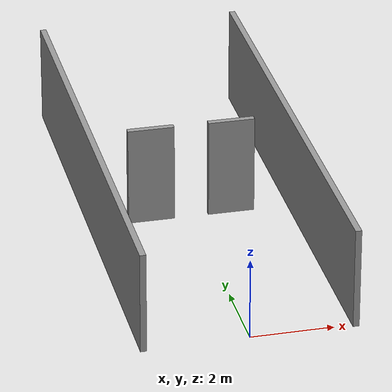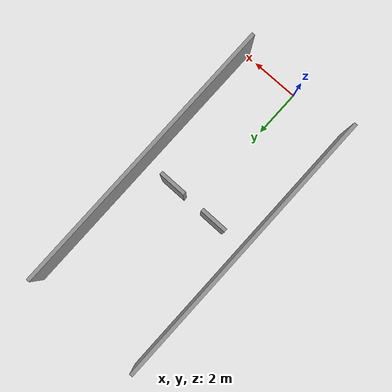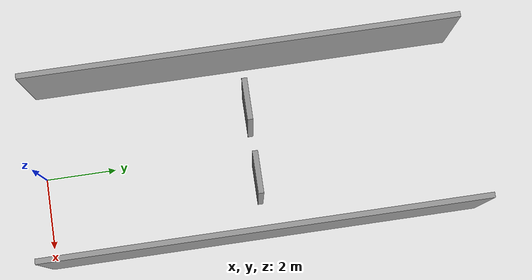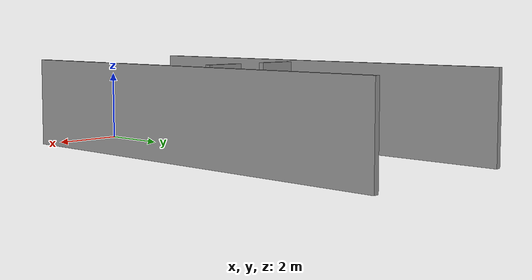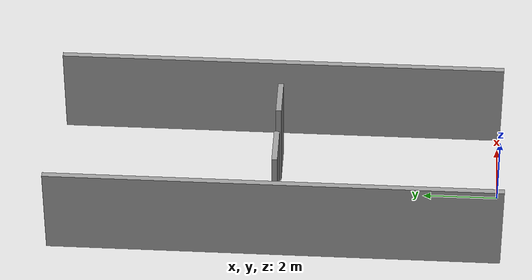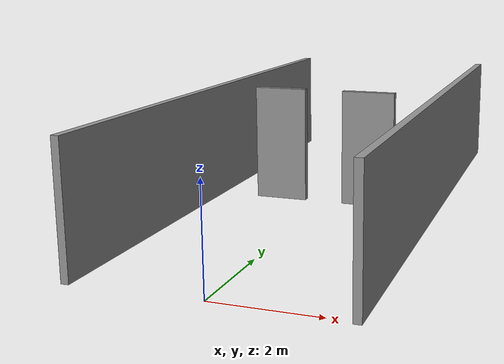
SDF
<?xml version='1.0'?>
<sdf version='1.6'>
  <model name='tunnelwld'>
    <pose frame=''>0 6 0 0 -0 0</pose>
    <link name='Wall_43'>
      <collision name='Wall_43_Collision'>
        <geometry>
          <box>
            <size>12.15 0.15 2.5</size>
          </box>
        </geometry>
        <pose frame=''>0 0 1.25 0 -0 0</pose>
      </collision>
      <visual name='Wall_43_Visual'>
        <pose frame=''>0 0 1.25 0 -0 0</pose>
        <geometry>
          <box>
            <size>12.15 0.15 2.5</size>
          </box>
        </geometry>
        <material>
          <script>
            <uri>file://media/materials/scripts/gazebo.material</uri>
            <name>Gazebo/Grey</name>
          </script>
          <ambient>1 1 1 1</ambient>
        </material>
        <meta>
          <layer>0</layer>
        </meta>
      </visual>
      <pose frame=''>-2.5 0 0 0 -0 1.5708</pose>
    </link>
    <link name='Wall_45'>
      <collision name='Wall_45_Collision'>
        <geometry>
          <box>
            <size>12.15 0.15 2.5</size>
          </box>
        </geometry>
        <pose frame=''>0 0 1.25 0 -0 0</pose>
      </collision>
      <visual name='Wall_45_Visual'>
        <pose frame=''>0 0 1.25 0 -0 0</pose>
        <geometry>
          <box>
            <size>12.15 0.15 2.5</size>
          </box>
        </geometry>
        <material>
          <script>
            <uri>file://media/materials/scripts/gazebo.material</uri>
            <name>Gazebo/Grey</name>
          </script>
          <ambient>1 1 1 1</ambient>
        </material>
        <meta>
          <layer>0</layer>
        </meta>
      </visual>
      <pose frame=''>2.5 0 0 0 -0 1.5708</pose>
    </link>
    <link name='Wall_47'>
      <collision name='Wall_47_Collision'>
        <geometry>
          <box>
            <size>1.15 0.15 2.5</size>
          </box>
        </geometry>
        <pose frame=''>0 0 1.25 0 -0 0</pose>
      </collision>
      <visual name='Wall_47_Visual'>
        <pose frame=''>0 0 1.25 0 -0 0</pose>
        <geometry>
          <box>
            <size>1.15 0.15 2.5</size>
          </box>
        </geometry>
        <material>
          <script>
            <uri>file://media/materials/scripts/gazebo.material</uri>
            <name>Gazebo/Grey</name>
          </script>
          <ambient>1 1 1 1</ambient>
        </material>
        <meta>
          <layer>0</layer>
        </meta>
      </visual>
      <pose frame=''>-1 0 0 0 -0 0</pose>
    </link>
    <link name='Wall_49'>
      <collision name='Wall_49_Collision'>
        <geometry>
          <box>
            <size>1.15 0.15 2.5</size>
          </box>
        </geometry>
        <pose frame=''>0 0 1.25 0 -0 0</pose>
      </collision>
      <visual name='Wall_49_Visual'>
        <pose frame=''>0 0 1.25 0 -0 0</pose>
        <geometry>
          <box>
            <size>1.15 0.15 2.5</size>
          </box>
        </geometry>
        <material>
          <script>
            <uri>file://media/materials/scripts/gazebo.material</uri>
            <name>Gazebo/Grey</name>
          </script>
          <ambient>1 1 1 1</ambient>
        </material>
        <meta>
          <layer>0</layer>
        </meta>
      </visual>
      <pose frame=''>1 0 0 0 -0 0</pose>
    </link>
    <static>1</static>
  </model>
</sdf>
